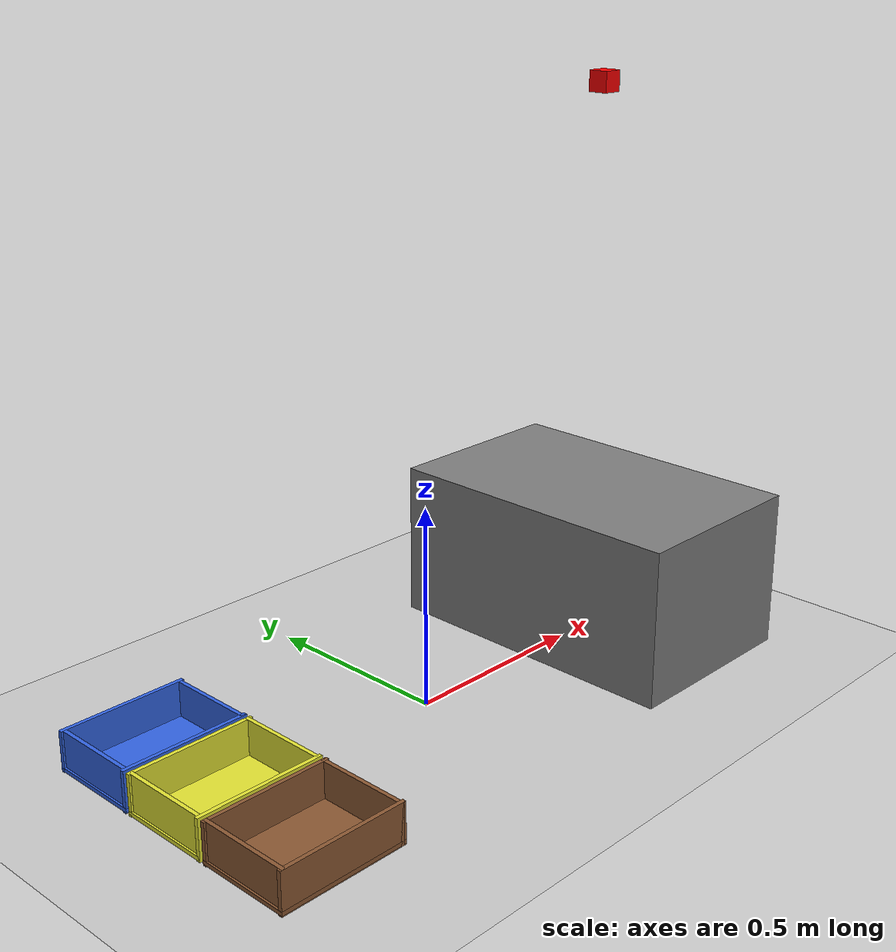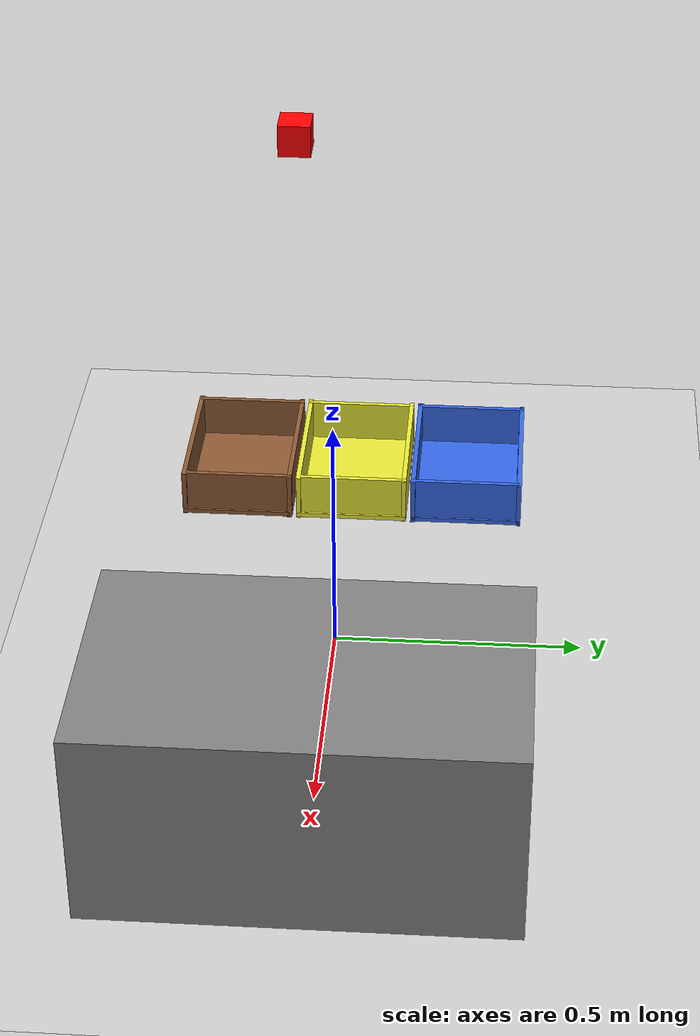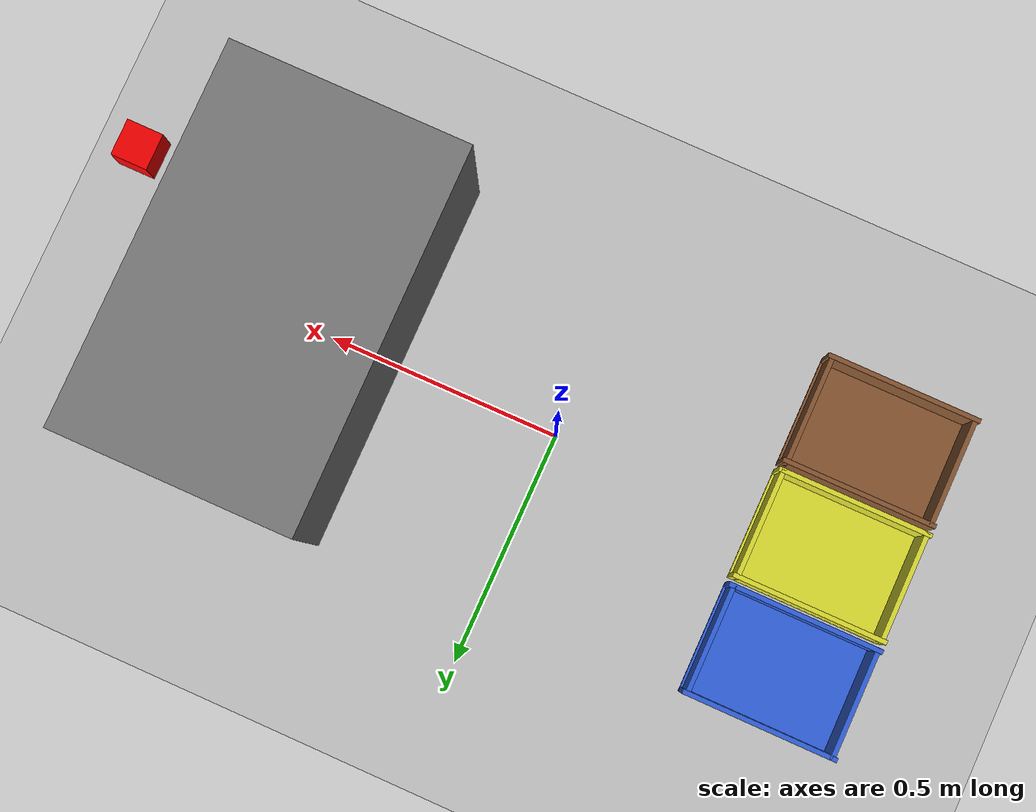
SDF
<sdf version="1.6">
 <world name="trash_sort_world">
  <plugin name="link_attacher_plugin" filename="libgazebo_ros_link_attacher.so"/>
  <include><uri>model://sun</uri></include>
  <include><uri>model://ground_plane</uri></include>
  <model name="work_table">
   <static>true</static>
   <pose>0.60 0 0.20 0 0 0</pose>
   <link name="link">
    <collision name="collision"><geometry><box><size>0.5 0.8 0.4</size></box></geometry></collision>
    <visual name="visual">
     <geometry><box><size>0.5 0.8 0.4</size></box></geometry>
     <material><ambient>0.3 0.3 0.3 1</ambient><diffuse>0.5 0.5 0.5 1</diffuse></material>
    </visual>
   </link>
  </model>
  <model name="bin_brown">
   <static>true</static>
   <pose>-0.60 -0.25 0.09 0 0 1.57</pose>
   <link name="link">
    <collision name="bot">
     <pose>0 0 -0.085 0 0 0</pose>
     <geometry><box><size>0.24 0.33 0.01</size></box></geometry>
    </collision>
    <visual name="bot_v">
     <pose>0 0 -0.085 0 0 0</pose>
     <geometry><box><size>0.24 0.33 0.01</size></box></geometry>
     <material><ambient>0.55 0.35 0.20 1</ambient></material>
    </visual>
    <collision name="w1">
     <pose>0.115 0 -0.06 0 0 0</pose>
     <geometry><box><size>0.01 0.33 0.14</size></box></geometry>
    </collision>
    <visual name="w1_v">
     <pose>0.115 0 -0.06 0 0 0</pose>
     <geometry><box><size>0.01 0.33 0.14</size></box></geometry>
     <material><ambient>0.55 0.35 0.20 1</ambient></material>
    </visual>
    <collision name="w2">
     <pose>-0.115 0 -0.06 0 0 0</pose>
     <geometry><box><size>0.01 0.33 0.14</size></box></geometry>
    </collision>
    <visual name="w2_v">
     <pose>-0.115 0 -0.06 0 0 0</pose>
     <geometry><box><size>0.01 0.33 0.14</size></box></geometry>
     <material><ambient>0.55 0.35 0.20 1</ambient></material>
    </visual>
    <collision name="w3">
     <pose>0 0.155 -0.06 0 0 0</pose>
     <geometry><box><size>0.24 0.01 0.14</size></box></geometry>
    </collision>
    <visual name="w3_v">
     <pose>0 0.155 -0.06 0 0 0</pose>
     <geometry><box><size>0.24 0.01 0.14</size></box></geometry>
     <material><ambient>0.55 0.35 0.20 1</ambient></material>
    </visual>
    <collision name="w4">
     <pose>0 -0.155 -0.06 0 0 0</pose>
     <geometry><box><size>0.24 0.01 0.14</size></box></geometry>
    </collision>
    <visual name="w4_v">
     <pose>0 -0.155 -0.06 0 0 0</pose>
     <geometry><box><size>0.24 0.01 0.14</size></box></geometry>
     <material><ambient>0.55 0.35 0.20 1</ambient></material>
    </visual>
   </link>
  </model>
  <model name="bin_yellow">
   <static>true</static>
   <pose>-0.60 0.0 0.09 0 0 1.57</pose>
   <link name="link">
    <collision name="bot">
     <pose>0 0 -0.085 0 0 0</pose>
     <geometry><box><size>0.24 0.33 0.01</size></box></geometry>
    </collision>
    <visual name="bot_v">
     <pose>0 0 -0.085 0 0 0</pose>
     <geometry><box><size>0.24 0.33 0.01</size></box></geometry>
     <material><ambient>0.9 0.9 0.2 1</ambient></material>
    </visual>
    <collision name="w1">
     <pose>0.115 0 -0.06 0 0 0</pose>
     <geometry><box><size>0.01 0.33 0.14</size></box></geometry>
    </collision>
    <visual name="w1_v">
     <pose>0.115 0 -0.06 0 0 0</pose>
     <geometry><box><size>0.01 0.33 0.14</size></box></geometry>
     <material><ambient>0.9 0.9 0.2 1</ambient></material>
    </visual>
    <collision name="w2">
     <pose>-0.115 0 -0.06 0 0 0</pose>
     <geometry><box><size>0.01 0.33 0.14</size></box></geometry>
    </collision>
    <visual name="w2_v">
     <pose>-0.115 0 -0.06 0 0 0</pose>
     <geometry><box><size>0.01 0.33 0.14</size></box></geometry>
     <material><ambient>0.9 0.9 0.2 1</ambient></material>
    </visual>
    <collision name="w3">
     <pose>0 0.155 -0.06 0 0 0</pose>
     <geometry><box><size>0.24 0.01 0.14</size></box></geometry>
    </collision>
    <visual name="w3_v">
     <pose>0 0.155 -0.06 0 0 0</pose>
     <geometry><box><size>0.24 0.01 0.14</size></box></geometry>
     <material><ambient>0.9 0.9 0.2 1</ambient></material>
    </visual>
    <collision name="w4">
     <pose>0 -0.155 -0.06 0 0 0</pose>
     <geometry><box><size>0.24 0.01 0.14</size></box></geometry>
    </collision>
    <visual name="w4_v">
     <pose>0 -0.155 -0.06 0 0 0</pose>
     <geometry><box><size>0.24 0.01 0.14</size></box></geometry>
     <material><ambient>0.9 0.9 0.2 1</ambient></material>
    </visual>
   </link>
  </model>
  <model name="bin_blue">
   <static>true</static>
   <pose>-0.60 0.25 0.09 0 0 1.57</pose>
   <link name="link">
    <collision name="bot">
     <pose>0 0 -0.085 0 0 0</pose>
     <geometry><box><size>0.24 0.33 0.01</size></box></geometry>
    </collision>
    <visual name="bot_v">
     <pose>0 0 -0.085 0 0 0</pose>
     <geometry><box><size>0.24 0.33 0.01</size></box></geometry>
     <material><ambient>0.2 0.4 0.9 1</ambient></material>
    </visual>
    <collision name="w1">
     <pose>0.115 0 -0.06 0 0 0</pose>
     <geometry><box><size>0.01 0.33 0.14</size></box></geometry>
    </collision>
    <visual name="w1_v">
     <pose>0.115 0 -0.06 0 0 0</pose>
     <geometry><box><size>0.01 0.33 0.14</size></box></geometry>
     <material><ambient>0.2 0.4 0.9 1</ambient></material>
    </visual>
    <collision name="w2">
     <pose>-0.115 0 -0.06 0 0 0</pose>
     <geometry><box><size>0.01 0.33 0.14</size></box></geometry>
    </collision>
    <visual name="w2_v">
     <pose>-0.115 0 -0.06 0 0 0</pose>
     <geometry><box><size>0.01 0.33 0.14</size></box></geometry>
     <material><ambient>0.2 0.4 0.9 1</ambient></material>
    </visual>
    <collision name="w3">
     <pose>0 0.155 -0.06 0 0 0</pose>
     <geometry><box><size>0.24 0.01 0.14</size></box></geometry>
    </collision>
    <visual name="w3_v">
     <pose>0 0.155 -0.06 0 0 0</pose>
     <geometry><box><size>0.24 0.01 0.14</size></box></geometry>
     <material><ambient>0.2 0.4 0.9 1</ambient></material>
    </visual>
    <collision name="w4">
     <pose>0 -0.155 -0.06 0 0 0</pose>
     <geometry><box><size>0.24 0.01 0.14</size></box></geometry>
    </collision>
    <visual name="w4_v">
     <pose>0 -0.155 -0.06 0 0 0</pose>
     <geometry><box><size>0.24 0.01 0.14</size></box></geometry>
     <material><ambient>0.2 0.4 0.9 1</ambient></material>
    </visual>
   </link>
  </model>
  <model name="overhead_camera">
   <static>true</static>
   <pose>0.60 0.0 1.40 0 1.57 3.14</pose>
   <link name="link">
    <visual name="visual">
     <geometry><box><size>0.05 0.05 0.05</size></box></geometry>
     <material><ambient>1 0 0 1</ambient></material>
    </visual>
    <sensor name="camera" type="camera">
     <camera>
      <horizontal_fov>1.047</horizontal_fov>
      <image><width>640</width><height>480</height></image>
      <clip><near>0.1</near><far>10</far></clip>
     </camera>
     <plugin name="camera_controller" filename="libgazebo_ros_camera.so">
      <alwaysOn>true</alwaysOn>
      <updateRate>30.0</updateRate>
      <cameraName>overhead_camera</cameraName>
      <imageTopicName>image_raw</imageTopicName>
      <cameraInfoTopicName>camera_info</cameraInfoTopicName>
      <frameName>camera_link</frameName>
     </plugin>
    </sensor>
   </link>
  </model>
 </world>
</sdf>
